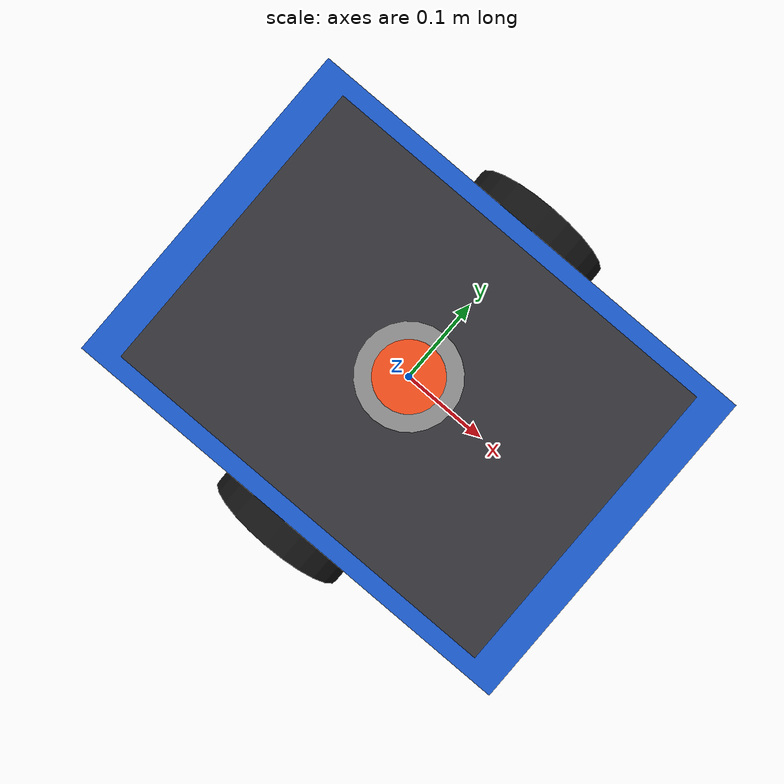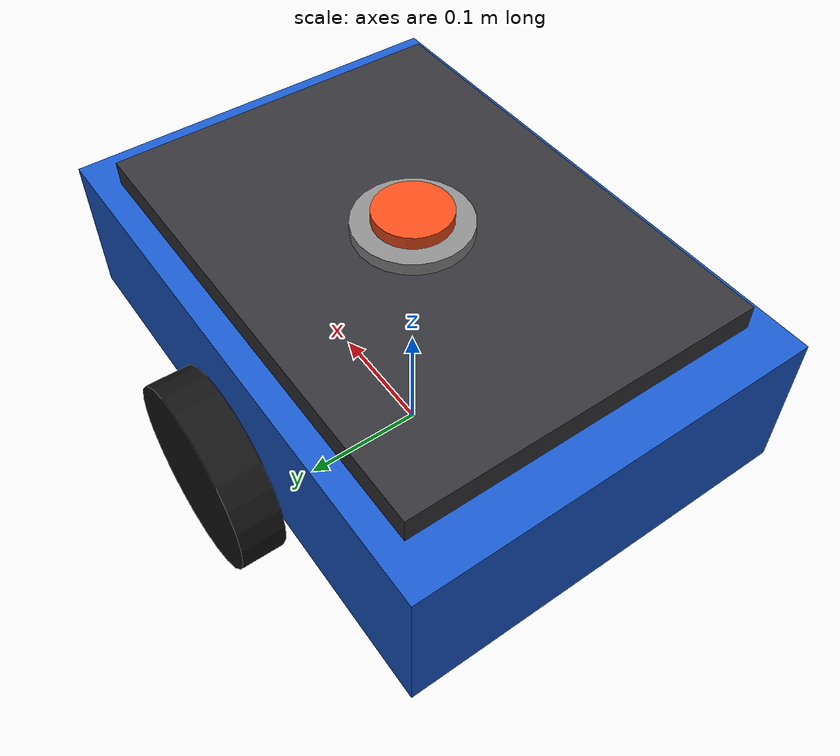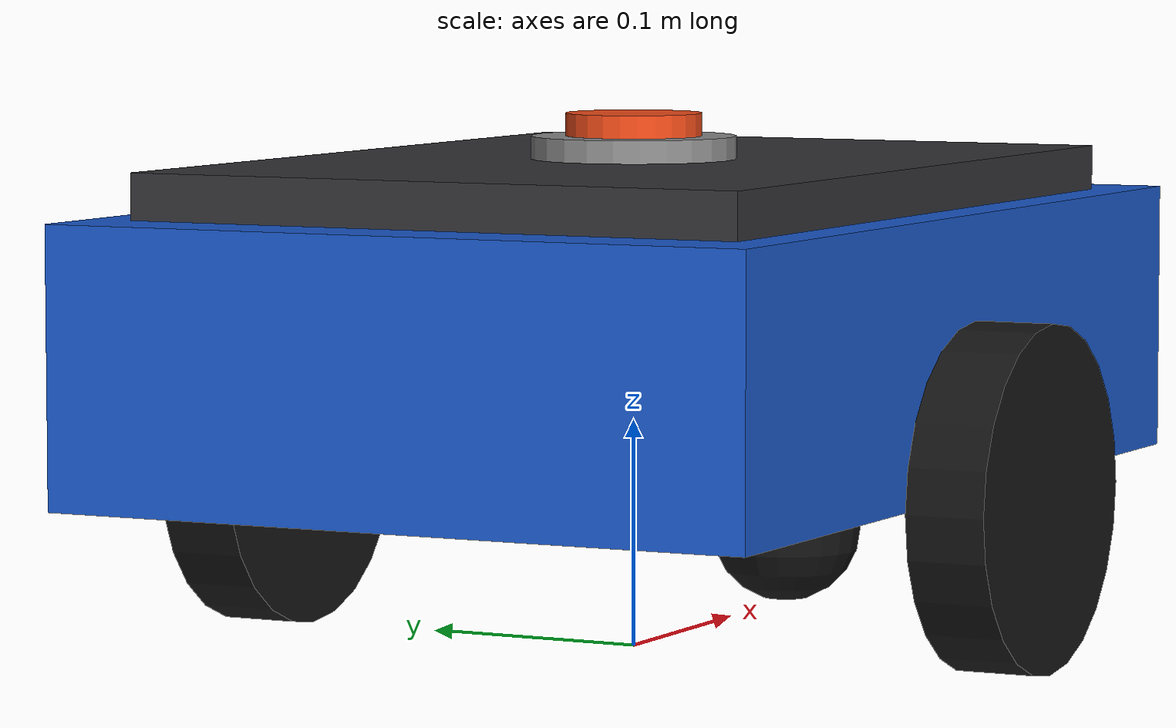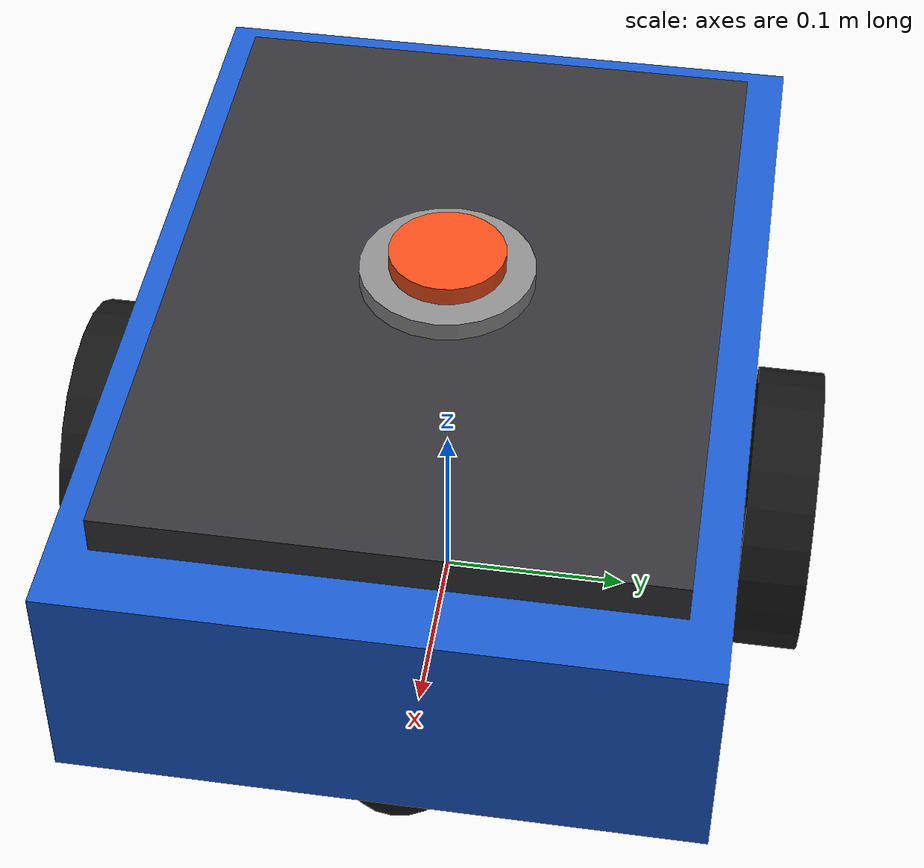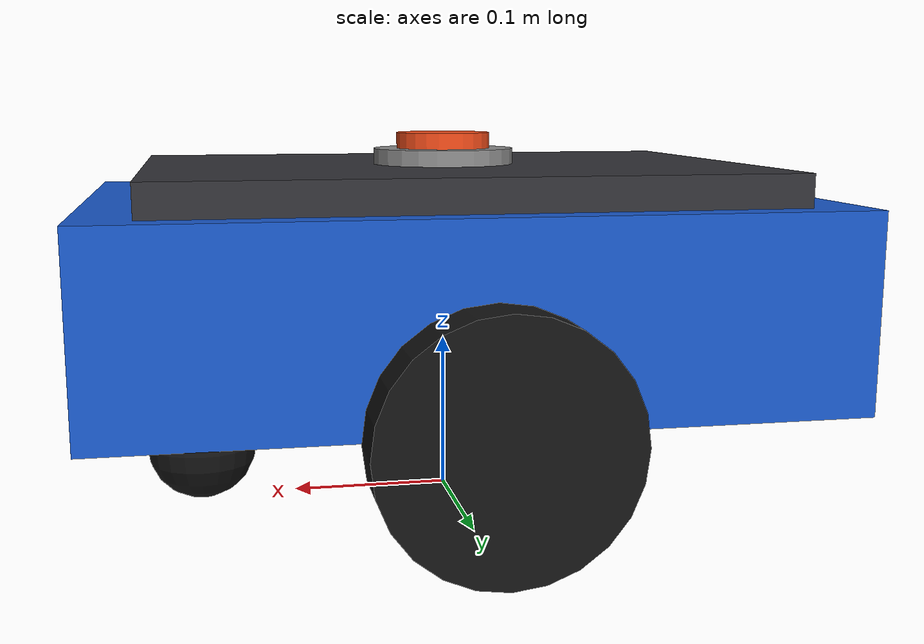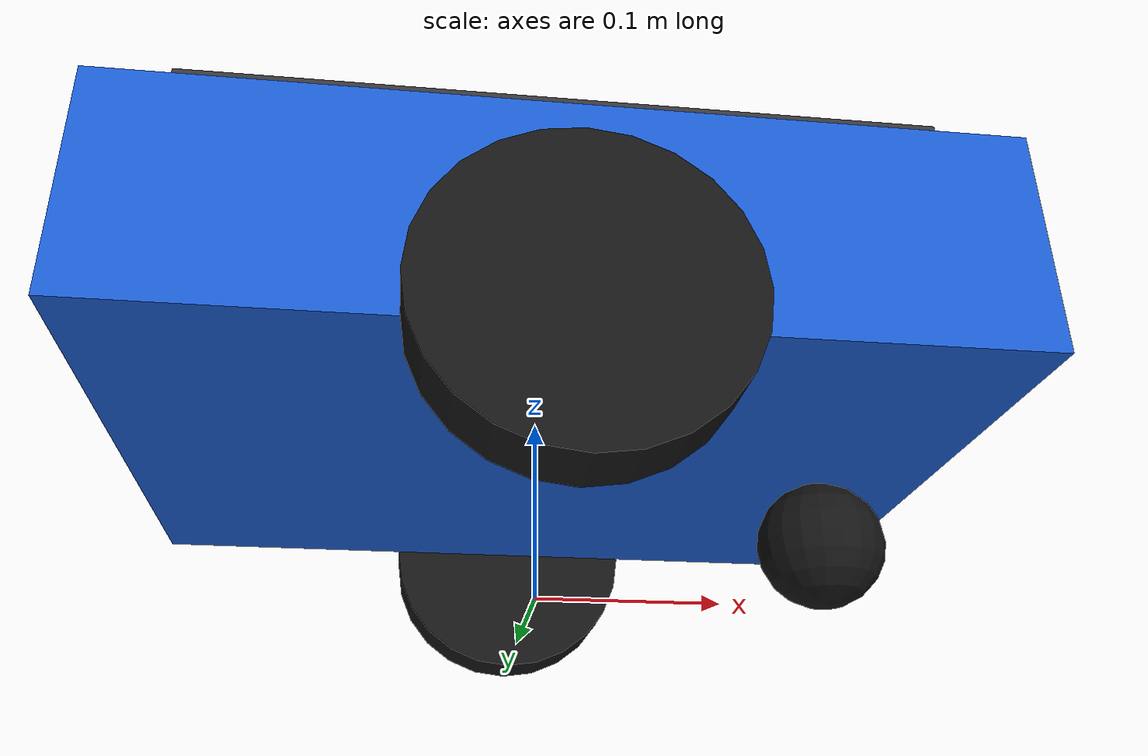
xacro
<?xml version="1.0"?>
<robot xmlns:xacro="http://www.ros.org/wiki/xacro"
       name="diy_nav_bot">

  <!-- 参数、材质、惯性宏（顺序：先属性 → 材质 → 惯性宏） -->
  <xacro:include filename="$(find diy_nav_description)/urdf/properties.xacro"/>
  <xacro:include filename="$(find diy_nav_description)/urdf/materials.xacro"/>
  <xacro:include filename="$(find diy_nav_description)/urdf/inertial_macros.xacro"/>

  <!-- 机器人部件（顺序：底盘 → 轮子 → 传感器；轮子/传感器依赖 base_link） -->
  <xacro:include filename="$(find diy_nav_description)/urdf/base.xacro"/>
  <xacro:include filename="$(find diy_nav_description)/urdf/wheels.xacro"/>
  <xacro:include filename="$(find diy_nav_description)/urdf/sensors.xacro"/>

  <!-- Gazebo 插件与物理属性（阶段 4.5 为空壳，阶段 5 填充实现） -->
  <xacro:include filename="$(find diy_nav_description)/urdf/gazebo_plugins.xacro"/>

</robot>

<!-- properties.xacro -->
<robot xmlns:xacro="http://www.ros.org/wiki/xacro">

  <!-- ============================================================
       通用常量
       ============================================================ -->
  <!-- 注：xacro 已内置 pi 常量，无需再次定义。若在其他文件中需要使用
       角度可直接写 ${pi/2} 等。 -->

  <!-- ============================================================
       底盘主体（chassis）
       ============================================================ -->
  <!-- 主底盘长（x）×宽（y）×高（z）；0.45×0.32 对齐规格书 -->
  <xacro:property name="base_length" value="0.45"/>
  <xacro:property name="base_width"  value="0.32"/>
  <xacro:property name="base_height" value="0.12"/>
  <xacro:property name="base_mass"   value="8.0"/>

  <!-- base_link 相对 base_footprint 的抬升高度（底盘几何中心离地）
       = 轮半径 + 底盘底面到轮轴的间隙（此处让底盘底面与轮轴等高，
         即底盘底面离地 = wheel_radius，底盘中心离地 = wheel_radius + base_height/2） -->
  <xacro:property name="base_link_z_offset" value="0.135"/>

  <!-- ============================================================
       底盘上盖（upper body）
       ============================================================ -->
  <xacro:property name="upper_length" value="0.38"/>
  <xacro:property name="upper_width"  value="0.28"/>
  <!-- 上盖高度 0.02：从 0.08 收薄，配合激光底座使扫描平面精确落到 0.23 m -->
  <xacro:property name="upper_height" value="0.02"/>
  <xacro:property name="upper_mass"   value="1.5"/>

  <!-- ============================================================
       驱动轮
       ============================================================ -->
  <xacro:property name="wheel_radius"     value="0.075"/>
  <xacro:property name="wheel_width"      value="0.035"/>
  <xacro:property name="wheel_mass"       value="0.60"/>
  <!-- 左右轮中心距（沿 y 轴）= 0.36：轮外缘 y=0.1975 > 底盘半宽 0.16，
       轮子完整探出底盘侧面，消除埋入底盘的物理隐患 -->
  <xacro:property name="wheel_separation" value="0.36"/>
  <!-- 轮心沿 x 方向偏移（0 表示位于底盘几何中心正下方） -->
  <xacro:property name="wheel_x_offset"   value="0.0"/>

  <!-- ============================================================
       前万向轮（球体近似）
       ============================================================ -->
  <xacro:property name="caster_radius" value="0.035"/>
  <xacro:property name="caster_mass"   value="0.15"/>
  <!-- caster 相对底盘中心的 x 位置（正值表示前方，规格书要求 front_caster） -->
  <xacro:property name="caster_x_offset" value="0.16"/>

  <!-- ============================================================
       激光雷达（顶部）
       ============================================================ -->
  <!-- 圆柱底座尺寸 -->
  <xacro:property name="laser_mount_radius" value="0.045"/>
  <!-- 底座高度 0.01：与收薄的上盖配合，使 laser_link 原点离地精确 = 0.23 m -->
  <xacro:property name="laser_mount_height" value="0.01"/>
  <xacro:property name="laser_mount_mass"   value="0.20"/>

  <xacro:property name="laser_link_radius" value="0.030"/>
  <xacro:property name="laser_link_height" value="0.010"/>
  <xacro:property name="laser_link_mass"   value="0.03"/>

  <!-- 上盖顶面高度（相对 base_link 原点） = upper_height/2（上盖中心在上盖底面 + upper_height/2）
       laser_mount 中心位于上盖顶面之上 + laser_mount_height/2 -->

  <!-- ============================================================
       IMU 外观盒
       ============================================================ -->
  <xacro:property name="imu_length" value="0.05"/>
  <xacro:property name="imu_width"  value="0.04"/>
  <xacro:property name="imu_height" value="0.02"/>
  <xacro:property name="imu_mass"   value="0.05"/>

</robot>

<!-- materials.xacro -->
<!--
  diy_nav_bot / materials.xacro
  ==============================
  预定义机器人各部件的显示颜色（RViz visual material）。
  仅使用纯色 RGBA，不依赖外部纹理或网络模型。
-->
<robot xmlns:xacro="http://www.ros.org/wiki/xacro">

  <!-- 底盘主蓝色 -->
  <material name="diy_blue">
    <color rgba="0.10 0.35 0.80 1.0"/>
  </material>

  <!-- 上盖深灰色 -->
  <material name="diy_dark">
    <color rgba="0.20 0.20 0.22 1.0"/>
  </material>

  <!-- 通用中性灰 -->
  <material name="diy_gray">
    <color rgba="0.55 0.55 0.55 1.0"/>
  </material>

  <!-- 轮子/万向轮黑色 -->
  <material name="diy_black">
    <color rgba="0.08 0.08 0.08 1.0"/>
  </material>

  <!-- IMU 亮红色 -->
  <material name="diy_red">
    <color rgba="0.85 0.15 0.15 1.0"/>
  </material>

  <!-- 激光雷达顶部部件（亮橙红，便于识别扫描平面） -->
  <material name="diy_lidar">
    <color rgba="0.95 0.30 0.10 1.0"/>
  </material>

</robot>

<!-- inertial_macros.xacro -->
<robot xmlns:xacro="http://www.ros.org/wiki/xacro">

  <!-- ========== BOX inertial ========== -->
  <xacro:macro name="box_inertial"
               params="mass x y z
                       *origin">
    <inertial>
      <xacro:insert_block name="origin"/>
      <mass value="${mass}"/>
      <inertia
        ixx="${mass * (y*y + z*z) / 12.0}"
        iyy="${mass * (x*x + z*z) / 12.0}"
        izz="${mass * (x*x + y*y) / 12.0}"
        ixy="0.0" ixz="0.0" iyz="0.0"/>
    </inertial>
  </xacro:macro>

  <!-- ========== CYLINDER inertial (轴沿 z) ==========
       轮子等需要让轴沿 y 的元件，请在调用时用 origin 的 rpy 旋转，
       与 visual/collision 的 origin 保持一致。 -->
  <xacro:macro name="cylinder_inertial"
               params="mass radius length
                       *origin">
    <inertial>
      <xacro:insert_block name="origin"/>
      <mass value="${mass}"/>
      <inertia
        ixx="${mass * (3.0 * radius * radius + length * length) / 12.0}"
        iyy="${mass * (3.0 * radius * radius + length * length) / 12.0}"
        izz="${mass * radius * radius / 2.0}"
        ixy="0.0" ixz="0.0" iyz="0.0"/>
    </inertial>
  </xacro:macro>

  <!-- ========== SPHERE inertial ========== -->
  <xacro:macro name="sphere_inertial"
               params="mass radius
                       *origin">
    <inertial>
      <xacro:insert_block name="origin"/>
      <mass value="${mass}"/>
      <inertia
        ixx="${2.0 * mass * radius * radius / 5.0}"
        iyy="${2.0 * mass * radius * radius / 5.0}"
        izz="${2.0 * mass * radius * radius / 5.0}"
        ixy="0.0" ixz="0.0" iyz="0.0"/>
    </inertial>
  </xacro:macro>

</robot>

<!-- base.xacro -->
<robot xmlns:xacro="http://www.ros.org/wiki/xacro">

  <!-- ========== base_footprint ==========
       无 visual/collision/inertial，仅作为机器人在地面上的二维参考。 -->
  <link name="base_footprint"/>

  <!-- ========== base_footprint -> base_link ==========
       fixed joint，将 base_link 抬升到底盘几何中心的合适高度。 -->
  <joint name="base_footprint_to_base_link" type="fixed">
    <parent link="base_footprint"/>
    <child  link="base_link"/>
    <origin xyz="0 0 ${base_link_z_offset}" rpy="0 0 0"/>
  </joint>

  <link name="base_link"/>

  <!-- ========== chassis_link ==========
       主底盘：box 几何 + 惯性。 -->
  <link name="chassis_link">
    <visual>
      <origin xyz="0 0 0" rpy="0 0 0"/>
      <geometry>
        <box size="${base_length} ${base_width} ${base_height}"/>
      </geometry>
      <material name="diy_blue"/>
    </visual>
    <collision>
      <origin xyz="0 0 0" rpy="0 0 0"/>
      <geometry>
        <box size="${base_length} ${base_width} ${base_height}"/>
      </geometry>
    </collision>
    <xacro:box_inertial
      mass="${base_mass}"
      x="${base_length}"
      y="${base_width}"
      z="${base_height}">
      <origin xyz="0 0 0" rpy="0 0 0"/>
    </xacro:box_inertial>
  </link>

  <joint name="base_link_to_chassis" type="fixed">
    <parent link="base_link"/>
    <child  link="chassis_link"/>
    <origin xyz="0 0 0" rpy="0 0 0"/>
  </joint>

  <!-- ========== upper_body_link ==========
       上盖：位于底盘顶部（沿 z 正方向）。 -->
  <link name="upper_body_link">
    <visual>
      <origin xyz="0 0 0" rpy="0 0 0"/>
      <geometry>
        <box size="${upper_length} ${upper_width} ${upper_height}"/>
      </geometry>
      <material name="diy_dark"/>
    </visual>
    <collision>
      <origin xyz="0 0 0" rpy="0 0 0"/>
      <geometry>
        <box size="${upper_length} ${upper_width} ${upper_height}"/>
      </geometry>
    </collision>
    <xacro:box_inertial
      mass="${upper_mass}"
      x="${upper_length}"
      y="${upper_width}"
      z="${upper_height}">
      <origin xyz="0 0 0" rpy="0 0 0"/>
    </xacro:box_inertial>
  </link>

  <joint name="chassis_to_upper_body" type="fixed">
    <parent link="chassis_link"/>
    <child  link="upper_body_link"/>
    <origin
      xyz="0 0 ${base_height/2 + upper_height/2}"
      rpy="0 0 0"/>
  </joint>

</robot>

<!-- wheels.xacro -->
<robot xmlns:xacro="http://www.ros.org/wiki/xacro">

  <!-- ========== 通用轮子宏 ========== -->
  <xacro:macro name="diy_wheel" params="prefix y_sign">
    <link name="${prefix}_wheel_link">
      <visual>
        <origin xyz="0 0 0" rpy="${pi/2} 0 0"/>
        <geometry>
          <cylinder radius="${wheel_radius}" length="${wheel_width}"/>
        </geometry>
        <material name="diy_black"/>
      </visual>
      <collision>
        <origin xyz="0 0 0" rpy="${pi/2} 0 0"/>
        <geometry>
          <cylinder radius="${wheel_radius}" length="${wheel_width}"/>
        </geometry>
      </collision>
      <xacro:cylinder_inertial
        mass="${wheel_mass}"
        radius="${wheel_radius}"
        length="${wheel_width}">
        <origin xyz="0 0 0" rpy="${pi/2} 0 0"/>
      </xacro:cylinder_inertial>
    </link>

    <!-- 轮心 y = ±wheel_separation/2；轮心 z 相对 base_link 为 -base_height/2
         使轮心与地面高度 = wheel_radius（正好接触地面）。 -->
    <joint name="${prefix}_wheel_joint" type="continuous">
      <parent link="base_link"/>
      <child  link="${prefix}_wheel_link"/>
      <origin
        xyz="${wheel_x_offset} ${y_sign * wheel_separation / 2} ${-base_height/2}"
        rpy="0 0 0"/>
      <axis xyz="0 1 0"/>
      <dynamics damping="0.01" friction="0.01"/>
    </joint>
  </xacro:macro>

  <!-- 左右轮：REP-103 中 y 轴朝左，因此左轮 y_sign=+1 -->
  <xacro:diy_wheel prefix="left"  y_sign="1"/>
  <xacro:diy_wheel prefix="right" y_sign="-1"/>

  <!-- ========== 前万向轮（球体近似，fixed joint） ==========
       位于底盘前部（caster_x_offset=+0.16，规格书要求 front_caster）。
       球体与地面接触点 z=0，与轮子底面严格共面、无悬空；
       Gazebo 物理仿真阶段配置零摩擦使其能随车体原地旋转。 -->
  <link name="front_caster_link">
    <visual>
      <origin xyz="0 0 0" rpy="0 0 0"/>
      <geometry>
        <sphere radius="${caster_radius}"/>
      </geometry>
      <material name="diy_black"/>
    </visual>
    <collision>
      <origin xyz="0 0 0" rpy="0 0 0"/>
      <geometry>
        <sphere radius="${caster_radius}"/>
      </geometry>
    </collision>
    <xacro:sphere_inertial
      mass="${caster_mass}"
      radius="${caster_radius}">
      <origin xyz="0 0 0" rpy="0 0 0"/>
    </xacro:sphere_inertial>
  </link>

  <!-- caster 球心 z 相对 base_link = -(base_link_z_offset - caster_radius)
       即让球心离地 = caster_radius（球底精确贴地，零悬空）。 -->
  <joint name="front_caster_joint" type="fixed">
    <parent link="base_link"/>
    <child  link="front_caster_link"/>
    <origin
      xyz="${caster_x_offset} 0 ${-(base_link_z_offset - caster_radius)}"
      rpy="0 0 0"/>
  </joint>

</robot>

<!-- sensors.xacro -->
<robot xmlns:xacro="http://www.ros.org/wiki/xacro">

  <!-- ========== laser_mount_link ==========
       圆柱底座，将雷达从上盖顶面抬起，形成扫描高度。 -->
  <link name="laser_mount_link">
    <visual>
      <origin xyz="0 0 0" rpy="0 0 0"/>
      <geometry>
        <cylinder radius="${laser_mount_radius}"
                  length="${laser_mount_height}"/>
      </geometry>
      <material name="diy_gray"/>
    </visual>
    <collision>
      <origin xyz="0 0 0" rpy="0 0 0"/>
      <geometry>
        <cylinder radius="${laser_mount_radius}"
                  length="${laser_mount_height}"/>
      </geometry>
    </collision>
    <xacro:cylinder_inertial
      mass="${laser_mount_mass}"
      radius="${laser_mount_radius}"
      length="${laser_mount_height}">
      <origin xyz="0 0 0" rpy="0 0 0"/>
    </xacro:cylinder_inertial>
  </link>

  <joint name="laser_mount_joint" type="fixed">
    <parent link="base_link"/>
    <child  link="laser_mount_link"/>
    <origin
      xyz="0 0 ${base_height/2 + upper_height + laser_mount_height/2}"
      rpy="0 0 0"/>
  </joint>

  <!-- ========== laser_link ==========
       激光扫描参考帧（x 前、y 左、z 上）。visual 为很扁的圆柱以体现顶盖。 -->
  <link name="laser_link">
    <visual>
      <origin xyz="0 0 0" rpy="0 0 0"/>
      <geometry>
        <cylinder radius="${laser_link_radius}"
                  length="${laser_link_height}"/>
      </geometry>
      <material name="diy_lidar"/>
    </visual>
    <collision>
      <origin xyz="0 0 0" rpy="0 0 0"/>
      <geometry>
        <cylinder radius="${laser_link_radius}"
                  length="${laser_link_height}"/>
      </geometry>
    </collision>
    <xacro:cylinder_inertial
      mass="${laser_link_mass}"
      radius="${laser_link_radius}"
      length="${laser_link_height}">
      <origin xyz="0 0 0" rpy="0 0 0"/>
    </xacro:cylinder_inertial>
  </link>

  <joint name="laser_joint" type="fixed">
    <parent link="laser_mount_link"/>
    <child  link="laser_link"/>
    <origin
      xyz="0 0 ${laser_mount_height/2 + laser_link_height/2}"
      rpy="0 0 0"/>
  </joint>

  <!-- ========== imu_link ==========
       小盒体，安装在底盘中心附近；轴向与 base_link 一致。 -->
  <link name="imu_link">
    <visual>
      <origin xyz="0 0 0" rpy="0 0 0"/>
      <geometry>
        <box size="${imu_length} ${imu_width} ${imu_height}"/>
      </geometry>
      <material name="diy_red"/>
    </visual>
    <collision>
      <origin xyz="0 0 0" rpy="0 0 0"/>
      <geometry>
        <box size="${imu_length} ${imu_width} ${imu_height}"/>
      </geometry>
    </collision>
    <xacro:box_inertial
      mass="${imu_mass}"
      x="${imu_length}"
      y="${imu_width}"
      z="${imu_height}">
      <origin xyz="0 0 0" rpy="0 0 0"/>
    </xacro:box_inertial>
  </link>

  <!-- IMU 放置在底盘内部几何中心（x=0, y=0, z=0）：
       - 位于 base_link 原点，即底盘几何中心
       - 完全嵌入底盘 box 内，无穿模；便于建模且轴向与 base_link 一致 -->
  <joint name="imu_joint" type="fixed">
    <parent link="base_link"/>
    <child  link="imu_link"/>
    <origin
      xyz="0 0 0"
      rpy="0 0 0"/>
  </joint>

</robot>
